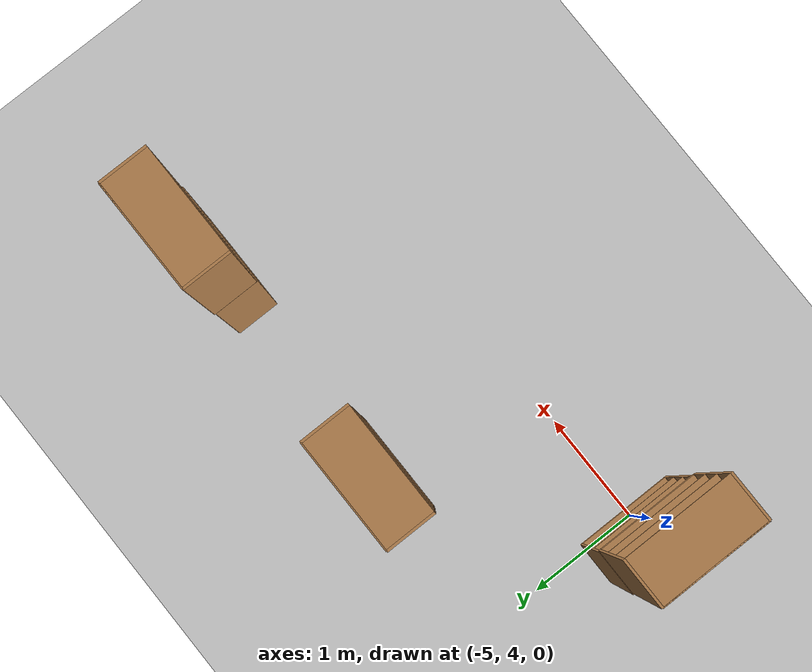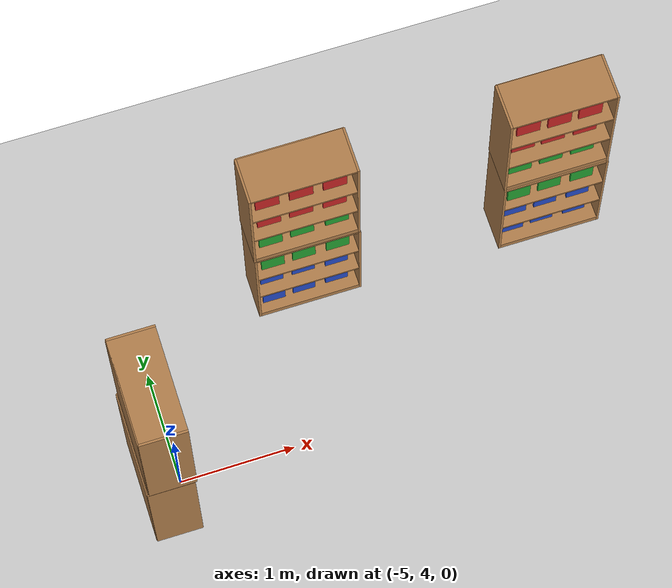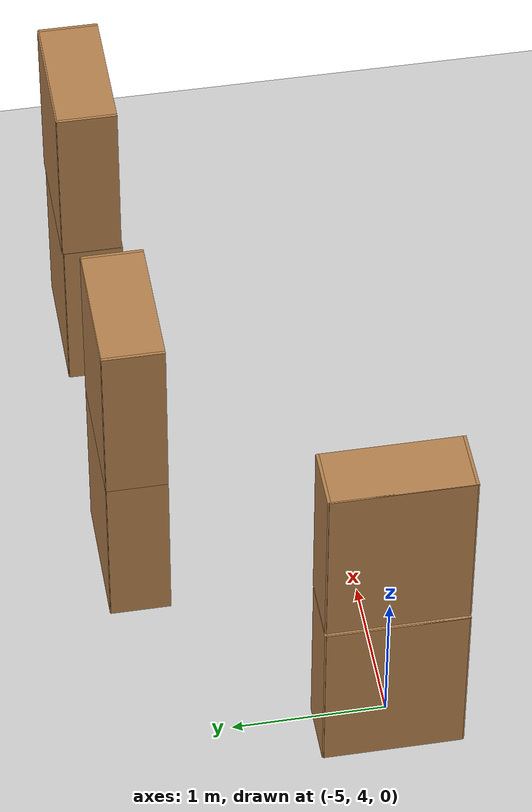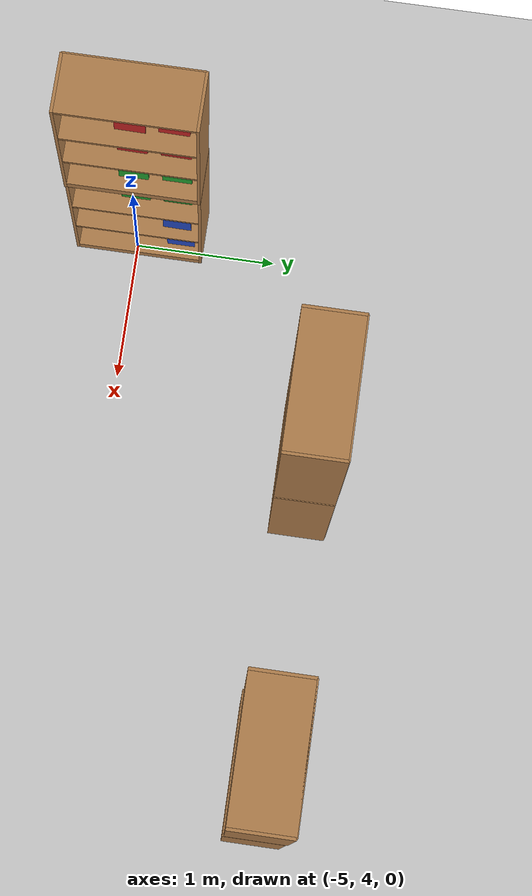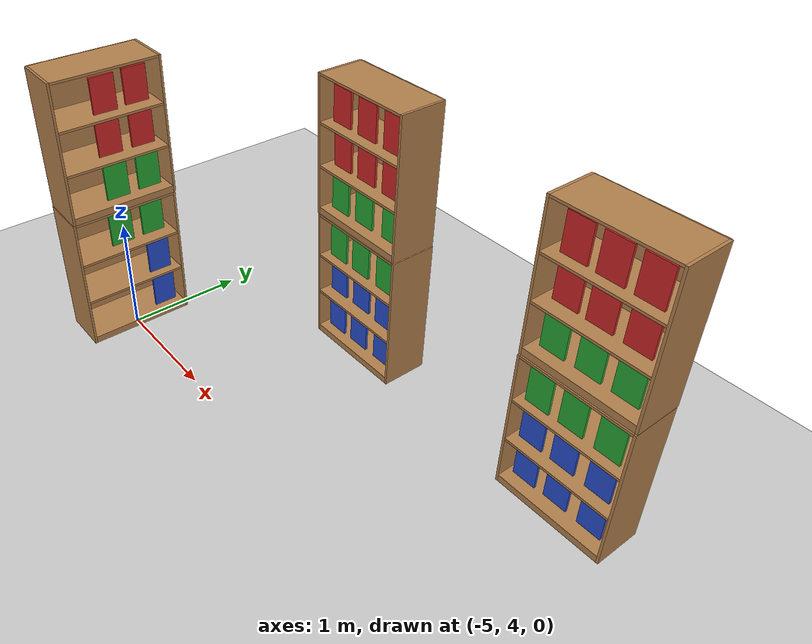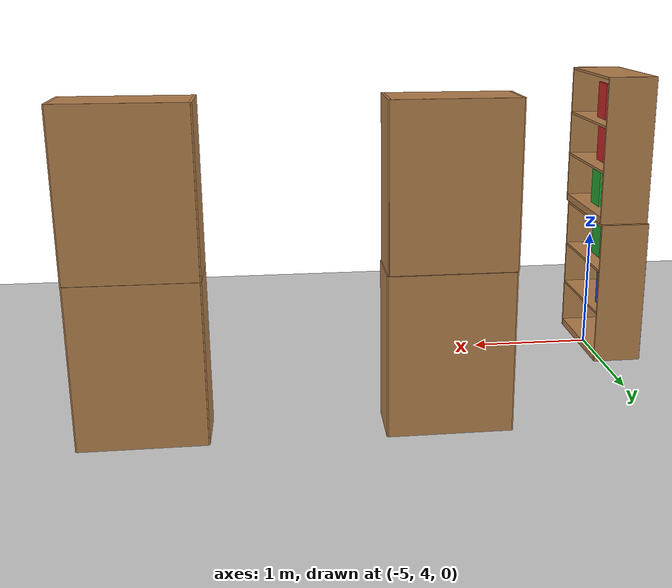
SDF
<sdf version="1.6">
 <world name="default">
  <model name="ground_plane">
   <static>1</static>
   <link name="link">
    <collision name="collision">
     <geometry><plane><normal>0 0 1</normal><size>100 100</size></plane></geometry>
     <surface><friction><ode><mu>100</mu><mu2>50</mu2></ode></friction></surface>
    </collision>
    <visual name="visual">
     <cast_shadows>0</cast_shadows>
     <geometry><plane><normal>0 0 1</normal><size>100 100</size></plane></geometry>
     <material>
      <script><uri>file://media/materials/scripts/gazebo.material</uri><name>Gazebo/Grey</name></script>
     </material>
    </visual>
   </link>
  </model>
  <model name="bookshelf_2_clone">
   <static>1</static>
   <link name="link">
    <inertial><mass>1</mass></inertial>
    <collision name="back">
     <pose>0 0.005 0.6 0 -0 0</pose>
     <geometry><box><size>0.9 0.01 1.2</size></box></geometry>
    </collision>
    <visual name="visual1">
     <pose>0 0.005 0.6 0 -0 0</pose>
     <geometry><box><size>0.9 0.01 1.2</size></box></geometry>
     <material>
      <script><uri>file://media/materials/scripts/gazebo.material</uri><name>Gazebo/Wood</name></script>
     </material>
    </visual>
    <collision name="left_side">
     <pose>0.45 -0.195 0.6 0 -0 0</pose>
     <geometry><box><size>0.02 0.4 1.2</size></box></geometry>
    </collision>
    <visual name="visual2">
     <pose>0.45 -0.195 0.6 0 -0 0</pose>
     <geometry><box><size>0.02 0.4 1.2</size></box></geometry>
     <material>
      <script><uri>file://media/materials/scripts/gazebo.material</uri><name>Gazebo/Wood</name></script>
     </material>
    </visual>
    <collision name="right_side">
     <pose>-0.45 -0.195 0.6 0 -0 0</pose>
     <geometry><box><size>0.02 0.4 1.2</size></box></geometry>
    </collision>
    <visual name="visual3">
     <pose>-0.45 -0.195 0.6 0 -0 0</pose>
     <geometry><box><size>0.02 0.4 1.2</size></box></geometry>
     <material>
      <script><uri>file://media/materials/scripts/gazebo.material</uri><name>Gazebo/Wood</name></script>
     </material>
    </visual>
    <collision name="bottom">
     <pose>0 -0.195 0.03 0 -0 0</pose>
     <geometry><box><size>0.88 0.4 0.06</size></box></geometry>
    </collision>
    <visual name="visual4">
     <pose>0 -0.195 0.03 0 -0 0</pose>
     <geometry><box><size>0.88 0.4 0.06</size></box></geometry>
     <material>
      <script><uri>file://media/materials/scripts/gazebo.material</uri><name>Gazebo/Wood</name></script>
     </material>
    </visual>
    <collision name="top">
     <pose>0 -0.195 1.19 0 -0 0</pose>
     <geometry><box><size>0.88 0.4 0.02</size></box></geometry>
    </collision>
    <visual name="visual5">
     <pose>0 -0.195 1.19 0 -0 0</pose>
     <geometry><box><size>0.88 0.4 0.02</size></box></geometry>
     <material>
      <script><uri>file://media/materials/scripts/gazebo.material</uri><name>Gazebo/Wood</name></script>
     </material>
    </visual>
    <collision name="low_shelf">
     <pose>0 -0.195 0.43 0 -0 0</pose>
     <geometry><box><size>0.88 0.4 0.02</size></box></geometry>
    </collision>
    <visual name="visual6">
     <pose>0 -0.195 0.43 0 -0 0</pose>
     <geometry><box><size>0.88 0.4 0.02</size></box></geometry>
     <material>
      <script><uri>file://media/materials/scripts/gazebo.material</uri><name>Gazebo/Wood</name></script>
     </material>
    </visual>
    <collision name="high_shelf">
     <pose>0 -0.195 0.8 0 -0 0</pose>
     <geometry><box><size>0.88 0.4 0.02</size></box></geometry>
    </collision>
    <visual name="visual7">
     <pose>0 -0.195 0.8 0 -0 0</pose>
     <geometry><box><size>0.88 0.4 0.02</size></box></geometry>
     <material>
      <script><uri>file://media/materials/scripts/gazebo.material</uri><name>Gazebo/Wood</name></script>
     </material>
    </visual>
   </link>
   <pose>-1.30264 5.59901 0 0 -0 0</pose>
  </model>
  <model name="bookshelf_2_clone_clone">
   <static>1</static>
   <link name="link">
    <inertial><mass>1</mass></inertial>
    <collision name="back">
     <pose>0 0.005 0.6 0 -0 0</pose>
     <geometry><box><size>0.9 0.01 1.2</size></box></geometry>
    </collision>
    <visual name="visual1">
     <pose>0 0.005 0.6 0 -0 0</pose>
     <geometry><box><size>0.9 0.01 1.2</size></box></geometry>
     <material>
      <script><uri>file://media/materials/scripts/gazebo.material</uri><name>Gazebo/Wood</name></script>
     </material>
    </visual>
    <collision name="left_side">
     <pose>0.45 -0.195 0.6 0 -0 0</pose>
     <geometry><box><size>0.02 0.4 1.2</size></box></geometry>
    </collision>
    <visual name="visual2">
     <pose>0.45 -0.195 0.6 0 -0 0</pose>
     <geometry><box><size>0.02 0.4 1.2</size></box></geometry>
     <material>
      <script><uri>file://media/materials/scripts/gazebo.material</uri><name>Gazebo/Wood</name></script>
     </material>
    </visual>
    <collision name="right_side">
     <pose>-0.45 -0.195 0.6 0 -0 0</pose>
     <geometry><box><size>0.02 0.4 1.2</size></box></geometry>
    </collision>
    <visual name="visual3">
     <pose>-0.45 -0.195 0.6 0 -0 0</pose>
     <geometry><box><size>0.02 0.4 1.2</size></box></geometry>
     <material>
      <script><uri>file://media/materials/scripts/gazebo.material</uri><name>Gazebo/Wood</name></script>
     </material>
    </visual>
    <collision name="bottom">
     <pose>0 -0.195 0.03 0 -0 0</pose>
     <geometry><box><size>0.88 0.4 0.06</size></box></geometry>
    </collision>
    <visual name="visual4">
     <pose>0 -0.195 0.03 0 -0 0</pose>
     <geometry><box><size>0.88 0.4 0.06</size></box></geometry>
     <material>
      <script><uri>file://media/materials/scripts/gazebo.material</uri><name>Gazebo/Wood</name></script>
     </material>
    </visual>
    <collision name="top">
     <pose>0 -0.195 1.19 0 -0 0</pose>
     <geometry><box><size>0.88 0.4 0.02</size></box></geometry>
    </collision>
    <visual name="visual5">
     <pose>0 -0.195 1.19 0 -0 0</pose>
     <geometry><box><size>0.88 0.4 0.02</size></box></geometry>
     <material>
      <script><uri>file://media/materials/scripts/gazebo.material</uri><name>Gazebo/Wood</name></script>
     </material>
    </visual>
    <collision name="low_shelf">
     <pose>0 -0.195 0.43 0 -0 0</pose>
     <geometry><box><size>0.88 0.4 0.02</size></box></geometry>
    </collision>
    <visual name="visual6">
     <pose>0 -0.195 0.43 0 -0 0</pose>
     <geometry><box><size>0.88 0.4 0.02</size></box></geometry>
     <material>
      <script><uri>file://media/materials/scripts/gazebo.material</uri><name>Gazebo/Wood</name></script>
     </material>
    </visual>
    <collision name="high_shelf">
     <pose>0 -0.195 0.8 0 -0 0</pose>
     <geometry><box><size>0.88 0.4 0.02</size></box></geometry>
    </collision>
    <visual name="visual7">
     <pose>0 -0.195 0.8 0 -0 0</pose>
     <geometry><box><size>0.88 0.4 0.02</size></box></geometry>
     <material>
      <script><uri>file://media/materials/scripts/gazebo.material</uri><name>Gazebo/Wood</name></script>
     </material>
    </visual>
   </link>
   <pose>-3.46853 5.62428 0 0 -0 0</pose>
  </model>
  <model name="bookshelf_3_clone">
   <static>1</static>
   <link name="link">
    <inertial><mass>1</mass></inertial>
    <collision name="back">
     <pose>0 0.005 0.6 0 -0 0</pose>
     <geometry><box><size>0.9 0.01 1.2</size></box></geometry>
    </collision>
    <visual name="visual1">
     <pose>0 0.005 0.6 0 -0 0</pose>
     <geometry><box><size>0.9 0.01 1.2</size></box></geometry>
     <material>
      <script><uri>file://media/materials/scripts/gazebo.material</uri><name>Gazebo/Wood</name></script>
     </material>
    </visual>
    <collision name="left_side">
     <pose>0.45 -0.195 0.6 0 -0 0</pose>
     <geometry><box><size>0.02 0.4 1.2</size></box></geometry>
    </collision>
    <visual name="visual2">
     <pose>0.45 -0.195 0.6 0 -0 0</pose>
     <geometry><box><size>0.02 0.4 1.2</size></box></geometry>
     <material>
      <script><uri>file://media/materials/scripts/gazebo.material</uri><name>Gazebo/Wood</name></script>
     </material>
    </visual>
    <collision name="right_side">
     <pose>-0.45 -0.195 0.6 0 -0 0</pose>
     <geometry><box><size>0.02 0.4 1.2</size></box></geometry>
    </collision>
    <visual name="visual3">
     <pose>-0.45 -0.195 0.6 0 -0 0</pose>
     <geometry><box><size>0.02 0.4 1.2</size></box></geometry>
     <material>
      <script><uri>file://media/materials/scripts/gazebo.material</uri><name>Gazebo/Wood</name></script>
     </material>
    </visual>
    <collision name="bottom">
     <pose>0 -0.195 0.03 0 -0 0</pose>
     <geometry><box><size>0.88 0.4 0.06</size></box></geometry>
    </collision>
    <visual name="visual4">
     <pose>0 -0.195 0.03 0 -0 0</pose>
     <geometry><box><size>0.88 0.4 0.06</size></box></geometry>
     <material>
      <script><uri>file://media/materials/scripts/gazebo.material</uri><name>Gazebo/Wood</name></script>
     </material>
    </visual>
    <collision name="top">
     <pose>0 -0.195 1.19 0 -0 0</pose>
     <geometry><box><size>0.88 0.4 0.02</size></box></geometry>
    </collision>
    <visual name="visual5">
     <pose>0 -0.195 1.19 0 -0 0</pose>
     <geometry><box><size>0.88 0.4 0.02</size></box></geometry>
     <material>
      <script><uri>file://media/materials/scripts/gazebo.material</uri><name>Gazebo/Wood</name></script>
     </material>
    </visual>
    <collision name="low_shelf">
     <pose>0 -0.195 0.43 0 -0 0</pose>
     <geometry><box><size>0.88 0.4 0.02</size></box></geometry>
    </collision>
    <visual name="visual6">
     <pose>0 -0.195 0.43 0 -0 0</pose>
     <geometry><box><size>0.88 0.4 0.02</size></box></geometry>
     <material>
      <script><uri>file://media/materials/scripts/gazebo.material</uri><name>Gazebo/Wood</name></script>
     </material>
    </visual>
    <collision name="high_shelf">
     <pose>0 -0.195 0.8 0 -0 0</pose>
     <geometry><box><size>0.88 0.4 0.02</size></box></geometry>
    </collision>
    <visual name="visual7">
     <pose>0 -0.195 0.8 0 -0 0</pose>
     <geometry><box><size>0.88 0.4 0.02</size></box></geometry>
     <material>
      <script><uri>file://media/materials/scripts/gazebo.material</uri><name>Gazebo/Wood</name></script>
     </material>
    </visual>
   </link>
   <pose>-1.30336 5.6079 1.20481 0 -0 0</pose>
  </model>
  <model name="bookshelf_3_clone_clone">
   <static>1</static>
   <link name="link">
    <inertial><mass>1</mass></inertial>
    <collision name="back">
     <pose>0 0.005 0.6 0 -0 0</pose>
     <geometry><box><size>0.9 0.01 1.2</size></box></geometry>
    </collision>
    <visual name="visual1">
     <pose>0 0.005 0.6 0 -0 0</pose>
     <geometry><box><size>0.9 0.01 1.2</size></box></geometry>
     <material>
      <script><uri>file://media/materials/scripts/gazebo.material</uri><name>Gazebo/Wood</name></script>
     </material>
    </visual>
    <collision name="left_side">
     <pose>0.45 -0.195 0.6 0 -0 0</pose>
     <geometry><box><size>0.02 0.4 1.2</size></box></geometry>
    </collision>
    <visual name="visual2">
     <pose>0.45 -0.195 0.6 0 -0 0</pose>
     <geometry><box><size>0.02 0.4 1.2</size></box></geometry>
     <material>
      <script><uri>file://media/materials/scripts/gazebo.material</uri><name>Gazebo/Wood</name></script>
     </material>
    </visual>
    <collision name="right_side">
     <pose>-0.45 -0.195 0.6 0 -0 0</pose>
     <geometry><box><size>0.02 0.4 1.2</size></box></geometry>
    </collision>
    <visual name="visual3">
     <pose>-0.45 -0.195 0.6 0 -0 0</pose>
     <geometry><box><size>0.02 0.4 1.2</size></box></geometry>
     <material>
      <script><uri>file://media/materials/scripts/gazebo.material</uri><name>Gazebo/Wood</name></script>
     </material>
    </visual>
    <collision name="bottom">
     <pose>0 -0.195 0.03 0 -0 0</pose>
     <geometry><box><size>0.88 0.4 0.06</size></box></geometry>
    </collision>
    <visual name="visual4">
     <pose>0 -0.195 0.03 0 -0 0</pose>
     <geometry><box><size>0.88 0.4 0.06</size></box></geometry>
     <material>
      <script><uri>file://media/materials/scripts/gazebo.material</uri><name>Gazebo/Wood</name></script>
     </material>
    </visual>
    <collision name="top">
     <pose>0 -0.195 1.19 0 -0 0</pose>
     <geometry><box><size>0.88 0.4 0.02</size></box></geometry>
    </collision>
    <visual name="visual5">
     <pose>0 -0.195 1.19 0 -0 0</pose>
     <geometry><box><size>0.88 0.4 0.02</size></box></geometry>
     <material>
      <script><uri>file://media/materials/scripts/gazebo.material</uri><name>Gazebo/Wood</name></script>
     </material>
    </visual>
    <collision name="low_shelf">
     <pose>0 -0.195 0.43 0 -0 0</pose>
     <geometry><box><size>0.88 0.4 0.02</size></box></geometry>
    </collision>
    <visual name="visual6">
     <pose>0 -0.195 0.43 0 -0 0</pose>
     <geometry><box><size>0.88 0.4 0.02</size></box></geometry>
     <material>
      <script><uri>file://media/materials/scripts/gazebo.material</uri><name>Gazebo/Wood</name></script>
     </material>
    </visual>
    <collision name="high_shelf">
     <pose>0 -0.195 0.8 0 -0 0</pose>
     <geometry><box><size>0.88 0.4 0.02</size></box></geometry>
    </collision>
    <visual name="visual7">
     <pose>0 -0.195 0.8 0 -0 0</pose>
     <geometry><box><size>0.88 0.4 0.02</size></box></geometry>
     <material>
      <script><uri>file://media/materials/scripts/gazebo.material</uri><name>Gazebo/Wood</name></script>
     </material>
    </visual>
   </link>
   <pose>-3.47373 5.62521 1.20481 0 -0 0</pose>
  </model>
  <model name="bookshelf_0_clone_0_clone_0">
   <static>1</static>
   <link name="link">
    <inertial><mass>1</mass></inertial>
    <collision name="back">
     <pose>0 0.005 0.6 0 -0 0</pose>
     <geometry><box><size>0.9 0.01 1.2</size></box></geometry>
    </collision>
    <visual name="visual1">
     <pose>0 0.005 0.6 0 -0 0</pose>
     <geometry><box><size>0.9 0.01 1.2</size></box></geometry>
     <material>
      <script><uri>file://media/materials/scripts/gazebo.material</uri><name>Gazebo/Wood</name></script>
     </material>
    </visual>
    <collision name="left_side">
     <pose>0.45 -0.195 0.6 0 -0 0</pose>
     <geometry><box><size>0.02 0.4 1.2</size></box></geometry>
    </collision>
    <visual name="visual2">
     <pose>0.45 -0.195 0.6 0 -0 0</pose>
     <geometry><box><size>0.02 0.4 1.2</size></box></geometry>
     <material>
      <script><uri>file://media/materials/scripts/gazebo.material</uri><name>Gazebo/Wood</name></script>
     </material>
    </visual>
    <collision name="right_side">
     <pose>-0.45 -0.195 0.6 0 -0 0</pose>
     <geometry><box><size>0.02 0.4 1.2</size></box></geometry>
    </collision>
    <visual name="visual3">
     <pose>-0.45 -0.195 0.6 0 -0 0</pose>
     <geometry><box><size>0.02 0.4 1.2</size></box></geometry>
     <material>
      <script><uri>file://media/materials/scripts/gazebo.material</uri><name>Gazebo/Wood</name></script>
     </material>
    </visual>
    <collision name="bottom">
     <pose>0 -0.195 0.03 0 -0 0</pose>
     <geometry><box><size>0.88 0.4 0.06</size></box></geometry>
    </collision>
    <visual name="visual4">
     <pose>0 -0.195 0.03 0 -0 0</pose>
     <geometry><box><size>0.88 0.4 0.06</size></box></geometry>
     <material>
      <script><uri>file://media/materials/scripts/gazebo.material</uri><name>Gazebo/Wood</name></script>
     </material>
    </visual>
    <collision name="top">
     <pose>0 -0.195 1.19 0 -0 0</pose>
     <geometry><box><size>0.88 0.4 0.02</size></box></geometry>
    </collision>
    <visual name="visual5">
     <pose>0 -0.195 1.19 0 -0 0</pose>
     <geometry><box><size>0.88 0.4 0.02</size></box></geometry>
     <material>
      <script><uri>file://media/materials/scripts/gazebo.material</uri><name>Gazebo/Wood</name></script>
     </material>
    </visual>
    <collision name="low_shelf">
     <pose>0 -0.195 0.43 0 -0 0</pose>
     <geometry><box><size>0.88 0.4 0.02</size></box></geometry>
    </collision>
    <visual name="visual6">
     <pose>0 -0.195 0.43 0 -0 0</pose>
     <geometry><box><size>0.88 0.4 0.02</size></box></geometry>
     <material>
      <script><uri>file://media/materials/scripts/gazebo.material</uri><name>Gazebo/Wood</name></script>
     </material>
    </visual>
    <collision name="high_shelf">
     <pose>0 -0.195 0.8 0 -0 0</pose>
     <geometry><box><size>0.88 0.4 0.02</size></box></geometry>
    </collision>
    <visual name="visual7">
     <pose>0 -0.195 0.8 0 -0 0</pose>
     <geometry><box><size>0.88 0.4 0.02</size></box></geometry>
     <material>
      <script><uri>file://media/materials/scripts/gazebo.material</uri><name>Gazebo/Wood</name></script>
     </material>
    </visual>
   </link>
   <pose>-5.32765 4.01778 0 0 -0 1.5697</pose>
  </model>
  <model name="bookshelf_0_clone_0_clone_1_clone_1">
   <static>1</static>
   <link name="link">
    <inertial><mass>1</mass></inertial>
    <collision name="back">
     <pose>0 0.005 0.6 0 -0 0</pose>
     <geometry><box><size>0.9 0.01 1.2</size></box></geometry>
    </collision>
    <visual name="visual1">
     <pose>0 0.005 0.6 0 -0 0</pose>
     <geometry><box><size>0.9 0.01 1.2</size></box></geometry>
     <material>
      <script><uri>file://media/materials/scripts/gazebo.material</uri><name>Gazebo/Wood</name></script>
     </material>
    </visual>
    <collision name="left_side">
     <pose>0.45 -0.195 0.6 0 -0 0</pose>
     <geometry><box><size>0.02 0.4 1.2</size></box></geometry>
    </collision>
    <visual name="visual2">
     <pose>0.45 -0.195 0.6 0 -0 0</pose>
     <geometry><box><size>0.02 0.4 1.2</size></box></geometry>
     <material>
      <script><uri>file://media/materials/scripts/gazebo.material</uri><name>Gazebo/Wood</name></script>
     </material>
    </visual>
    <collision name="right_side">
     <pose>-0.45 -0.195 0.6 0 -0 0</pose>
     <geometry><box><size>0.02 0.4 1.2</size></box></geometry>
    </collision>
    <visual name="visual3">
     <pose>-0.45 -0.195 0.6 0 -0 0</pose>
     <geometry><box><size>0.02 0.4 1.2</size></box></geometry>
     <material>
      <script><uri>file://media/materials/scripts/gazebo.material</uri><name>Gazebo/Wood</name></script>
     </material>
    </visual>
    <collision name="bottom">
     <pose>0 -0.195 0.03 0 -0 0</pose>
     <geometry><box><size>0.88 0.4 0.06</size></box></geometry>
    </collision>
    <visual name="visual4">
     <pose>0 -0.195 0.03 0 -0 0</pose>
     <geometry><box><size>0.88 0.4 0.06</size></box></geometry>
     <material>
      <script><uri>file://media/materials/scripts/gazebo.material</uri><name>Gazebo/Wood</name></script>
     </material>
    </visual>
    <collision name="top">
     <pose>0 -0.195 1.19 0 -0 0</pose>
     <geometry><box><size>0.88 0.4 0.02</size></box></geometry>
    </collision>
    <visual name="visual5">
     <pose>0 -0.195 1.19 0 -0 0</pose>
     <geometry><box><size>0.88 0.4 0.02</size></box></geometry>
     <material>
      <script><uri>file://media/materials/scripts/gazebo.material</uri><name>Gazebo/Wood</name></script>
     </material>
    </visual>
    <collision name="low_shelf">
     <pose>0 -0.195 0.43 0 -0 0</pose>
     <geometry><box><size>0.88 0.4 0.02</size></box></geometry>
    </collision>
    <visual name="visual6">
     <pose>0 -0.195 0.43 0 -0 0</pose>
     <geometry><box><size>0.88 0.4 0.02</size></box></geometry>
     <material>
      <script><uri>file://media/materials/scripts/gazebo.material</uri><name>Gazebo/Wood</name></script>
     </material>
    </visual>
    <collision name="high_shelf">
     <pose>0 -0.195 0.8 0 -0 0</pose>
     <geometry><box><size>0.88 0.4 0.02</size></box></geometry>
    </collision>
    <visual name="visual7">
     <pose>0 -0.195 0.8 0 -0 0</pose>
     <geometry><box><size>0.88 0.4 0.02</size></box></geometry>
     <material>
      <script><uri>file://media/materials/scripts/gazebo.material</uri><name>Gazebo/Wood</name></script>
     </material>
    </visual>
   </link>
   <pose>-5.31196 4.0164 1.21067 0 -0 1.5697</pose>
  </model>
  <model name="bluecube_0_clone">
   <static>1</static>
   <link name="link">
    <pose>0 0 0.21 0 -0 0</pose>
    <collision name="collision"><geometry><box><size>0.2 0.02 0.3</size></box></geometry></collision>
    <visual name="visual">
     <geometry><box><size>0.2 0.02 0.3</size></box></geometry>
     <material>
      <script><uri>file://media/materials/scripts/gazebo.material</uri><name>Gazebo/Blue</name></script>
     </material>
    </visual>
   </link>
   <pose>-3.49414 5.33589 0 0 -0 0</pose>
  </model>
  <model name="bluecube_0_clone_clone">
   <static>1</static>
   <link name="link">
    <pose>0 0 0.21 0 -0 0</pose>
    <collision name="collision"><geometry><box><size>0.2 0.02 0.3</size></box></geometry></collision>
    <visual name="visual">
     <geometry><box><size>0.2 0.02 0.3</size></box></geometry>
     <material>
      <script><uri>file://media/materials/scripts/gazebo.material</uri><name>Gazebo/Blue</name></script>
     </material>
    </visual>
   </link>
   <pose>-3.7656 5.32752 0 0 -0 0</pose>
  </model>
  <model name="bluecube_0_clone_clone_0">
   <static>1</static>
   <link name="link">
    <pose>0 0 0.21 0 -0 0</pose>
    <collision name="collision"><geometry><box><size>0.2 0.02 0.3</size></box></geometry></collision>
    <visual name="visual">
     <geometry><box><size>0.2 0.02 0.3</size></box></geometry>
     <material>
      <script><uri>file://media/materials/scripts/gazebo.material</uri><name>Gazebo/Blue</name></script>
     </material>
    </visual>
   </link>
   <pose>-3.20018 5.34222 0 0 -0 0</pose>
  </model>
  <model name="bluecube_0_clone_clone_1">
   <static>1</static>
   <link name="link">
    <pose>0 0 0.21 0 -0 0</pose>
    <collision name="collision"><geometry><box><size>0.2 0.02 0.3</size></box></geometry></collision>
    <visual name="visual">
     <geometry><box><size>0.2 0.02 0.3</size></box></geometry>
     <material>
      <script><uri>file://media/materials/scripts/gazebo.material</uri><name>Gazebo/Blue</name></script>
     </material>
    </visual>
   </link>
   <pose>-1.60375 5.32435 0 0 -0 0</pose>
  </model>
  <model name="bluecube_0_clone_clone_2">
   <static>1</static>
   <link name="link">
    <pose>0 0 0.21 0 -0 0</pose>
    <collision name="collision"><geometry><box><size>0.2 0.02 0.3</size></box></geometry></collision>
    <visual name="visual">
     <geometry><box><size>0.2 0.02 0.3</size></box></geometry>
     <material>
      <script><uri>file://media/materials/scripts/gazebo.material</uri><name>Gazebo/Blue</name></script>
     </material>
    </visual>
   </link>
   <pose>-1.33048 5.33486 0 0 -0 0</pose>
  </model>
  <model name="bluecube_0_clone_clone_3">
   <static>1</static>
   <link name="link">
    <pose>0 0 0.21 0 -0 0</pose>
    <collision name="collision"><geometry><box><size>0.2 0.02 0.3</size></box></geometry></collision>
    <visual name="visual">
     <geometry><box><size>0.2 0.02 0.3</size></box></geometry>
     <material>
      <script><uri>file://media/materials/scripts/gazebo.material</uri><name>Gazebo/Blue</name></script>
     </material>
    </visual>
   </link>
   <pose>-1.0341 5.33292 0 0 -0 0</pose>
  </model>
  <model name="bluecube_0_clone_clone_10_clone">
   <static>1</static>
   <link name="link">
    <pose>0 0 0.21 0 -0 0</pose>
    <collision name="collision"><geometry><box><size>0.2 0.02 0.3</size></box></geometry></collision>
    <visual name="visual">
     <geometry><box><size>0.2 0.02 0.3</size></box></geometry>
     <material>
      <script><uri>file://media/materials/scripts/gazebo.material</uri><name>Gazebo/Blue</name></script>
     </material>
    </visual>
   </link>
   <pose>-3.49078 5.34971 0.38097 0 -0 0</pose>
  </model>
  <model name="bluecube_0_clone_clone_10_clone_0">
   <static>1</static>
   <link name="link">
    <pose>0 0 0.21 0 -0 0</pose>
    <collision name="collision"><geometry><box><size>0.2 0.02 0.3</size></box></geometry></collision>
    <visual name="visual">
     <geometry><box><size>0.2 0.02 0.3</size></box></geometry>
     <material>
      <script><uri>file://media/materials/scripts/gazebo.material</uri><name>Gazebo/Blue</name></script>
     </material>
    </visual>
   </link>
   <pose>-3.77101 5.34399 0.38097 0 -0 0</pose>
  </model>
  <model name="bluecube_0_clone_clone_10_clone_clone">
   <static>1</static>
   <link name="link">
    <pose>0 0 0.21 0 -0 0</pose>
    <collision name="collision"><geometry><box><size>0.2 0.02 0.3</size></box></geometry></collision>
    <visual name="visual">
     <geometry><box><size>0.2 0.02 0.3</size></box></geometry>
     <material>
      <script><uri>file://media/materials/scripts/gazebo.material</uri><name>Gazebo/Blue</name></script>
     </material>
    </visual>
   </link>
   <pose>-3.19773 5.33978 0.38097 0 -0 0</pose>
  </model>
  <model name="bluecube_0_clone_clone_10_clone_clone_0">
   <static>1</static>
   <link name="link">
    <pose>0 0 0.21 0 -0 0</pose>
    <collision name="collision"><geometry><box><size>0.2 0.02 0.3</size></box></geometry></collision>
    <visual name="visual">
     <geometry><box><size>0.2 0.02 0.3</size></box></geometry>
     <material>
      <script><uri>file://media/materials/scripts/gazebo.material</uri><name>Gazebo/Blue</name></script>
     </material>
    </visual>
   </link>
   <pose>-1.60163 5.31116 0.38097 0 -0 0</pose>
  </model>
  <model name="bluecube_0_clone_clone_10_clone_clone_1">
   <static>1</static>
   <link name="link">
    <pose>0 0 0.21 0 -0 0</pose>
    <collision name="collision"><geometry><box><size>0.2 0.02 0.3</size></box></geometry></collision>
    <visual name="visual">
     <geometry><box><size>0.2 0.02 0.3</size></box></geometry>
     <material>
      <script><uri>file://media/materials/scripts/gazebo.material</uri><name>Gazebo/Blue</name></script>
     </material>
    </visual>
   </link>
   <pose>-1.32825 5.3151 0.38097 0 -0 0</pose>
  </model>
  <model name="bluecube_0_clone_clone_10_clone_clone_2">
   <static>1</static>
   <link name="link">
    <pose>0 0 0.21 0 -0 0</pose>
    <collision name="collision"><geometry><box><size>0.2 0.02 0.3</size></box></geometry></collision>
    <visual name="visual">
     <geometry><box><size>0.2 0.02 0.3</size></box></geometry>
     <material>
      <script><uri>file://media/materials/scripts/gazebo.material</uri><name>Gazebo/Blue</name></script>
     </material>
    </visual>
   </link>
   <pose>-1.03391 5.31365 0.38097 0 -0 0</pose>
  </model>
  <model name="bluecube_0_clone_clone_9_clone_11_clone_clone_20">
   <static>1</static>
   <link name="link">
    <pose>0 0 0.21 0 -0 0</pose>
    <collision name="collision"><geometry><box><size>0.2 0.02 0.3</size></box></geometry></collision>
    <visual name="visual">
     <geometry><box><size>0.2 0.02 0.3</size></box></geometry>
     <material>
      <script><uri>file://media/materials/scripts/gazebo.material</uri><name>Gazebo/Blue</name></script>
     </material>
    </visual>
   </link>
   <pose>-5.03926 4.31369 0 0 -0 1.57146</pose>
  </model>
  <model name="bluecube_0_clone_clone_10_clone_clone_21_clone_clone_21">
   <static>1</static>
   <link name="link">
    <pose>0 0 0.21 0 -0 0</pose>
    <collision name="collision"><geometry><box><size>0.2 0.02 0.3</size></box></geometry></collision>
    <visual name="visual">
     <geometry><box><size>0.2 0.02 0.3</size></box></geometry>
     <material>
      <script><uri>file://media/materials/scripts/gazebo.material</uri><name>Gazebo/Blue</name></script>
     </material>
    </visual>
   </link>
   <pose>-5.02208 4.29425 0.38097 0 -0 1.5507</pose>
  </model>
  <model name="greencube_clone">
   <static>1</static>
   <link name="link">
    <pose>0 0 0.21 0 -0 0</pose>
    <collision name="collision"><geometry><box><size>0.2 0.02 0.3</size></box></geometry></collision>
    <visual name="visual">
     <geometry><box><size>0.2 0.02 0.3</size></box></geometry>
     <material>
      <script><uri>file://media/materials/scripts/gazebo.material</uri><name>Gazebo/Green</name></script>
     </material>
    </visual>
   </link>
   <pose>-3.48343 5.32221 0.751098 0 -0 0</pose>
  </model>
  <model name="greencube_clone_clone">
   <static>1</static>
   <link name="link">
    <pose>0 0 0.21 0 -0 0</pose>
    <collision name="collision"><geometry><box><size>0.2 0.02 0.3</size></box></geometry></collision>
    <visual name="visual">
     <geometry><box><size>0.2 0.02 0.3</size></box></geometry>
     <material>
      <script><uri>file://media/materials/scripts/gazebo.material</uri><name>Gazebo/Green</name></script>
     </material>
    </visual>
   </link>
   <pose>-3.1878 5.32171 0.751098 0 -0 0</pose>
  </model>
  <model name="greencube_clone_clone_0">
   <static>1</static>
   <link name="link">
    <pose>0 0 0.21 0 -0 0</pose>
    <collision name="collision"><geometry><box><size>0.2 0.02 0.3</size></box></geometry></collision>
    <visual name="visual">
     <geometry><box><size>0.2 0.02 0.3</size></box></geometry>
     <material>
      <script><uri>file://media/materials/scripts/gazebo.material</uri><name>Gazebo/Green</name></script>
     </material>
    </visual>
   </link>
   <pose>-3.75598 5.31881 0.751098 0 -0 0</pose>
  </model>
  <model name="greencube_clone_clone_1">
   <static>1</static>
   <link name="link">
    <pose>0 0 0.21 0 -0 0</pose>
    <collision name="collision"><geometry><box><size>0.2 0.02 0.3</size></box></geometry></collision>
    <visual name="visual">
     <geometry><box><size>0.2 0.02 0.3</size></box></geometry>
     <material>
      <script><uri>file://media/materials/scripts/gazebo.material</uri><name>Gazebo/Green</name></script>
     </material>
    </visual>
   </link>
   <pose>-1.59401 5.28871 0.751098 0 -0 0</pose>
  </model>
  <model name="greencube_clone_clone_2">
   <static>1</static>
   <link name="link">
    <pose>0 0 0.21 0 -0 0</pose>
    <collision name="collision"><geometry><box><size>0.2 0.02 0.3</size></box></geometry></collision>
    <visual name="visual">
     <geometry><box><size>0.2 0.02 0.3</size></box></geometry>
     <material>
      <script><uri>file://media/materials/scripts/gazebo.material</uri><name>Gazebo/Green</name></script>
     </material>
    </visual>
   </link>
   <pose>-1.32065 5.29742 0.751098 0 -0 0</pose>
  </model>
  <model name="greencube_clone_clone_3">
   <static>1</static>
   <link name="link">
    <pose>0 0 0.21 0 -0 0</pose>
    <collision name="collision"><geometry><box><size>0.2 0.02 0.3</size></box></geometry></collision>
    <visual name="visual">
     <geometry><box><size>0.2 0.02 0.3</size></box></geometry>
     <material>
      <script><uri>file://media/materials/scripts/gazebo.material</uri><name>Gazebo/Green</name></script>
     </material>
    </visual>
   </link>
   <pose>-1.03011 5.29772 0.751098 0 -0 0</pose>
  </model>
  <model name="greencube_clone_clone_22_clone_clone_20">
   <static>1</static>
   <link name="link">
    <pose>0 0 0.21 0 -0 0</pose>
    <collision name="collision"><geometry><box><size>0.2 0.02 0.3</size></box></geometry></collision>
    <visual name="visual">
     <geometry><box><size>0.2 0.02 0.3</size></box></geometry>
     <material>
      <script><uri>file://media/materials/scripts/gazebo.material</uri><name>Gazebo/Green</name></script>
     </material>
    </visual>
   </link>
   <pose>-5.06537 4.00727 0.751098 0 -0 1.56837</pose>
  </model>
  <model name="greencube_clone_clone_22_clone_clone_21">
   <static>1</static>
   <link name="link">
    <pose>0 0 0.21 0 -0 0</pose>
    <collision name="collision"><geometry><box><size>0.2 0.02 0.3</size></box></geometry></collision>
    <visual name="visual">
     <geometry><box><size>0.2 0.02 0.3</size></box></geometry>
     <material>
      <script><uri>file://media/materials/scripts/gazebo.material</uri><name>Gazebo/Green</name></script>
     </material>
    </visual>
   </link>
   <pose>-5.07114 4.29919 0.751098 0 -0 1.56837</pose>
  </model>
  <model name="greencube_clone_clone_0_clone_clone">
   <static>1</static>
   <link name="link">
    <pose>0 0 0.21 0 -0 0</pose>
    <collision name="collision"><geometry><box><size>0.2 0.02 0.3</size></box></geometry></collision>
    <visual name="visual">
     <geometry><box><size>0.2 0.02 0.3</size></box></geometry>
     <material>
      <script><uri>file://media/materials/scripts/gazebo.material</uri><name>Gazebo/Green</name></script>
     </material>
    </visual>
   </link>
   <pose>-3.48348 5.34001 1.20525 0 -0 0</pose>
  </model>
  <model name="greencube_clone_clone_0_clone_clone_clone">
   <static>1</static>
   <link name="link">
    <pose>0 0 0.21 0 -0 0</pose>
    <collision name="collision"><geometry><box><size>0.2 0.02 0.3</size></box></geometry></collision>
    <visual name="visual">
     <geometry><box><size>0.2 0.02 0.3</size></box></geometry>
     <material>
      <script><uri>file://media/materials/scripts/gazebo.material</uri><name>Gazebo/Green</name></script>
     </material>
    </visual>
   </link>
   <pose>-3.18 5.35167 1.20525 0 -0 0</pose>
  </model>
  <model name="greencube_clone_clone_0_clone_clone_clone_0">
   <static>1</static>
   <link name="link">
    <pose>0 0 0.21 0 -0 0</pose>
    <collision name="collision"><geometry><box><size>0.2 0.02 0.3</size></box></geometry></collision>
    <visual name="visual">
     <geometry><box><size>0.2 0.02 0.3</size></box></geometry>
     <material>
      <script><uri>file://media/materials/scripts/gazebo.material</uri><name>Gazebo/Green</name></script>
     </material>
    </visual>
   </link>
   <pose>-3.75719 5.32883 1.20525 0 -0 0</pose>
  </model>
  <model name="greencube_clone_clone_0_clone_clone_clone_1">
   <static>1</static>
   <link name="link">
    <pose>0 0 0.21 0 -0 0</pose>
    <collision name="collision"><geometry><box><size>0.2 0.02 0.3</size></box></geometry></collision>
    <visual name="visual">
     <geometry><box><size>0.2 0.02 0.3</size></box></geometry>
     <material>
      <script><uri>file://media/materials/scripts/gazebo.material</uri><name>Gazebo/Green</name></script>
     </material>
    </visual>
   </link>
   <pose>-1.59176 5.32987 1.20525 0 -0 0</pose>
  </model>
  <model name="greencube_clone_clone_0_clone_clone_clone_2">
   <static>1</static>
   <link name="link">
    <pose>0 0 0.21 0 -0 0</pose>
    <collision name="collision"><geometry><box><size>0.2 0.02 0.3</size></box></geometry></collision>
    <visual name="visual">
     <geometry><box><size>0.2 0.02 0.3</size></box></geometry>
     <material>
      <script><uri>file://media/materials/scripts/gazebo.material</uri><name>Gazebo/Green</name></script>
     </material>
    </visual>
   </link>
   <pose>-1.31585 5.34046 1.20525 0 -0 0</pose>
  </model>
  <model name="greencube_clone_clone_0_clone_clone_clone_3">
   <static>1</static>
   <link name="link">
    <pose>0 0 0.21 0 -0 0</pose>
    <collision name="collision"><geometry><box><size>0.2 0.02 0.3</size></box></geometry></collision>
    <visual name="visual">
     <geometry><box><size>0.2 0.02 0.3</size></box></geometry>
     <material>
      <script><uri>file://media/materials/scripts/gazebo.material</uri><name>Gazebo/Green</name></script>
     </material>
    </visual>
   </link>
   <pose>-1.0395 5.34384 1.20525 0 -0 0</pose>
  </model>
  <model name="greencube_clone_clone_22_clone_clone_10_clone_clone_clone_8">
   <static>1</static>
   <link name="link">
    <pose>0 0 0.21 0 -0 0</pose>
    <collision name="collision"><geometry><box><size>0.2 0.02 0.3</size></box></geometry></collision>
    <visual name="visual">
     <geometry><box><size>0.2 0.02 0.3</size></box></geometry>
     <material>
      <script><uri>file://media/materials/scripts/gazebo.material</uri><name>Gazebo/Green</name></script>
     </material>
    </visual>
   </link>
   <pose>-5.03056 4.01441 1.21098 0 -0 1.56837</pose>
  </model>
  <model name="greencube_clone_clone_22_clone_clone_10_clone_clone_clone_9">
   <static>1</static>
   <link name="link">
    <pose>0 0 0.21 0 -0 0</pose>
    <collision name="collision"><geometry><box><size>0.2 0.02 0.3</size></box></geometry></collision>
    <visual name="visual">
     <geometry><box><size>0.2 0.02 0.3</size></box></geometry>
     <material>
      <script><uri>file://media/materials/scripts/gazebo.material</uri><name>Gazebo/Green</name></script>
     </material>
    </visual>
   </link>
   <pose>-5.04202 4.30514 1.21098 0 -0 1.56837</pose>
  </model>
  <model name="redcube_clone">
   <static>1</static>
   <link name="link">
    <pose>0 0 0.21 0 -0 0</pose>
    <collision name="collision"><geometry><box><size>0.2 0.02 0.3</size></box></geometry></collision>
    <visual name="visual">
     <geometry><box><size>0.2 0.02 0.3</size></box></geometry>
     <material>
      <script><uri>file://media/materials/scripts/gazebo.material</uri><name>Gazebo/Red</name></script>
     </material>
    </visual>
   </link>
   <pose>-3.48175 5.34774 1.58534 0 -0 0</pose>
  </model>
  <model name="redcube_clone_clone">
   <static>1</static>
   <link name="link">
    <pose>0 0 0.21 0 -0 0</pose>
    <collision name="collision"><geometry><box><size>0.2 0.02 0.3</size></box></geometry></collision>
    <visual name="visual">
     <geometry><box><size>0.2 0.02 0.3</size></box></geometry>
     <material>
      <script><uri>file://media/materials/scripts/gazebo.material</uri><name>Gazebo/Red</name></script>
     </material>
    </visual>
   </link>
   <pose>-3.75577 5.34242 1.58534 0 -0 0</pose>
  </model>
  <model name="redcube_clone_clone_0">
   <static>1</static>
   <link name="link">
    <pose>0 0 0.21 0 -0 0</pose>
    <collision name="collision"><geometry><box><size>0.2 0.02 0.3</size></box></geometry></collision>
    <visual name="visual">
     <geometry><box><size>0.2 0.02 0.3</size></box></geometry>
     <material>
      <script><uri>file://media/materials/scripts/gazebo.material</uri><name>Gazebo/Red</name></script>
     </material>
    </visual>
   </link>
   <pose>-3.19629 5.34566 1.58534 0 -0 0</pose>
  </model>
  <model name="redcube_clone_clone_1">
   <static>1</static>
   <link name="link">
    <pose>0 0 0.21 0 -0 0</pose>
    <collision name="collision"><geometry><box><size>0.2 0.02 0.3</size></box></geometry></collision>
    <visual name="visual">
     <geometry><box><size>0.2 0.02 0.3</size></box></geometry>
     <material>
      <script><uri>file://media/materials/scripts/gazebo.material</uri><name>Gazebo/Red</name></script>
     </material>
    </visual>
   </link>
   <pose>-1.57926 5.34687 1.58534 0 -0 0</pose>
  </model>
  <model name="redcube_clone_clone_2">
   <static>1</static>
   <link name="link">
    <pose>0 0 0.21 0 -0 0</pose>
    <collision name="collision"><geometry><box><size>0.2 0.02 0.3</size></box></geometry></collision>
    <visual name="visual">
     <geometry><box><size>0.2 0.02 0.3</size></box></geometry>
     <material>
      <script><uri>file://media/materials/scripts/gazebo.material</uri><name>Gazebo/Red</name></script>
     </material>
    </visual>
   </link>
   <pose>-1.32013 5.34499 1.58534 0 -0 0</pose>
  </model>
  <model name="redcube_clone_clone_3">
   <static>1</static>
   <link name="link">
    <pose>0 0 0.21 0 -0 0</pose>
    <collision name="collision"><geometry><box><size>0.2 0.02 0.3</size></box></geometry></collision>
    <visual name="visual">
     <geometry><box><size>0.2 0.02 0.3</size></box></geometry>
     <material>
      <script><uri>file://media/materials/scripts/gazebo.material</uri><name>Gazebo/Red</name></script>
     </material>
    </visual>
   </link>
   <pose>-1.04482 5.34299 1.58534 0 -0 0</pose>
  </model>
  <model name="redcube_clone_clone_22_clone_clone_8">
   <static>1</static>
   <link name="link">
    <pose>0 0 0.21 0 -0 0</pose>
    <collision name="collision"><geometry><box><size>0.2 0.02 0.3</size></box></geometry></collision>
    <visual name="visual">
     <geometry><box><size>0.2 0.02 0.3</size></box></geometry>
     <material>
      <script><uri>file://media/materials/scripts/gazebo.material</uri><name>Gazebo/Red</name></script>
     </material>
    </visual>
   </link>
   <pose>-5.05735 4.01587 1.58534 0 -0 1.55372</pose>
  </model>
  <model name="redcube_clone_clone_22_clone_clone_9">
   <static>1</static>
   <link name="link">
    <pose>0 0 0.21 0 -0 0</pose>
    <collision name="collision"><geometry><box><size>0.2 0.02 0.3</size></box></geometry></collision>
    <visual name="visual">
     <geometry><box><size>0.2 0.02 0.3</size></box></geometry>
     <material>
      <script><uri>file://media/materials/scripts/gazebo.material</uri><name>Gazebo/Red</name></script>
     </material>
    </visual>
   </link>
   <pose>-5.05887 4.30325 1.58534 0 -0 1.55372</pose>
  </model>
  <model name="redcube_clone_clone_22_clone_clone_22_clone_clone_20">
   <static>1</static>
   <link name="link">
    <pose>0 0 0.21 0 -0 0</pose>
    <collision name="collision"><geometry><box><size>0.2 0.02 0.3</size></box></geometry></collision>
    <visual name="visual">
     <geometry><box><size>0.2 0.02 0.3</size></box></geometry>
     <material>
      <script><uri>file://media/materials/scripts/gazebo.material</uri><name>Gazebo/Red</name></script>
     </material>
    </visual>
   </link>
   <pose>-5.04012 4.01715 1.95914 0 -0 1.55372</pose>
  </model>
  <model name="redcube_clone_clone_22_clone_clone_22_clone_clone_21">
   <static>1</static>
   <link name="link">
    <pose>0 0 0.21 0 -0 0</pose>
    <collision name="collision"><geometry><box><size>0.2 0.02 0.3</size></box></geometry></collision>
    <visual name="visual">
     <geometry><box><size>0.2 0.02 0.3</size></box></geometry>
     <material>
      <script><uri>file://media/materials/scripts/gazebo.material</uri><name>Gazebo/Red</name></script>
     </material>
    </visual>
   </link>
   <pose>-5.05864 4.29651 1.95914 0 -0 1.55372</pose>
  </model>
  <model name="redcube_clone_clone_clone_clone">
   <static>1</static>
   <link name="link">
    <pose>0 0 0.21 0 -0 0</pose>
    <collision name="collision"><geometry><box><size>0.2 0.02 0.3</size></box></geometry></collision>
    <visual name="visual">
     <geometry><box><size>0.2 0.02 0.3</size></box></geometry>
     <material>
      <script><uri>file://media/materials/scripts/gazebo.material</uri><name>Gazebo/Red</name></script>
     </material>
    </visual>
   </link>
   <pose>-3.47675 5.33484 1.95637 0 -0 0</pose>
  </model>
  <model name="redcube_clone_clone_clone_clone_clone">
   <static>1</static>
   <link name="link">
    <pose>0 0 0.21 0 -0 0</pose>
    <collision name="collision"><geometry><box><size>0.2 0.02 0.3</size></box></geometry></collision>
    <visual name="visual">
     <geometry><box><size>0.2 0.02 0.3</size></box></geometry>
     <material>
      <script><uri>file://media/materials/scripts/gazebo.material</uri><name>Gazebo/Red</name></script>
     </material>
    </visual>
   </link>
   <pose>-3.76151 5.3336 1.95637 0 -0 0</pose>
  </model>
  <model name="redcube_clone_clone_clone_clone_clone_0">
   <static>1</static>
   <link name="link">
    <pose>0 0 0.21 0 -0 0</pose>
    <collision name="collision"><geometry><box><size>0.2 0.02 0.3</size></box></geometry></collision>
    <visual name="visual">
     <geometry><box><size>0.2 0.02 0.3</size></box></geometry>
     <material>
      <script><uri>file://media/materials/scripts/gazebo.material</uri><name>Gazebo/Red</name></script>
     </material>
    </visual>
   </link>
   <pose>-3.19263 5.33605 1.95637 0 -0 0</pose>
  </model>
  <model name="redcube_clone_clone_clone_clone_clone_1">
   <static>1</static>
   <link name="link">
    <pose>0 0 0.21 0 -0 0</pose>
    <collision name="collision"><geometry><box><size>0.2 0.02 0.3</size></box></geometry></collision>
    <visual name="visual">
     <geometry><box><size>0.2 0.02 0.3</size></box></geometry>
     <material>
      <script><uri>file://media/materials/scripts/gazebo.material</uri><name>Gazebo/Red</name></script>
     </material>
    </visual>
   </link>
   <pose>-1.56564 5.31323 1.95637 0 -0 0</pose>
  </model>
  <model name="redcube_clone_clone_clone_clone_clone_2">
   <static>1</static>
   <link name="link">
    <pose>0 0 0.21 0 -0 0</pose>
    <collision name="collision"><geometry><box><size>0.2 0.02 0.3</size></box></geometry></collision>
    <visual name="visual">
     <geometry><box><size>0.2 0.02 0.3</size></box></geometry>
     <material>
      <script><uri>file://media/materials/scripts/gazebo.material</uri><name>Gazebo/Red</name></script>
     </material>
    </visual>
   </link>
   <pose>-1.30123 5.30782 1.95637 0 -0 0</pose>
  </model>
  <model name="redcube_clone_clone_clone_clone_clone_3">
   <static>1</static>
   <link name="link">
    <pose>0 0 0.21 0 -0 0</pose>
    <collision name="collision"><geometry><box><size>0.2 0.02 0.3</size></box></geometry></collision>
    <visual name="visual">
     <geometry><box><size>0.2 0.02 0.3</size></box></geometry>
     <material>
      <script><uri>file://media/materials/scripts/gazebo.material</uri><name>Gazebo/Red</name></script>
     </material>
    </visual>
   </link>
   <pose>-1.03821 5.30781 1.95637 0 -0 0</pose>
  </model>
 </world>
</sdf>
